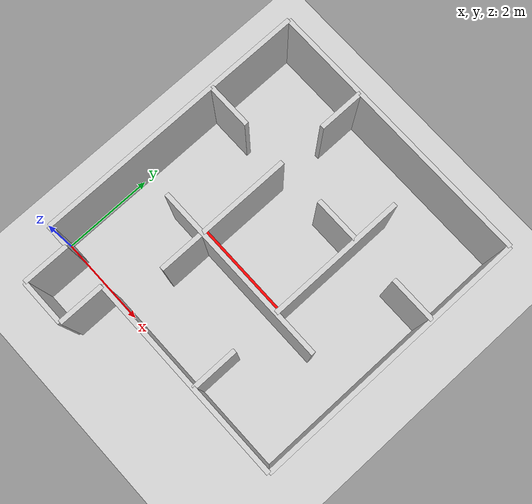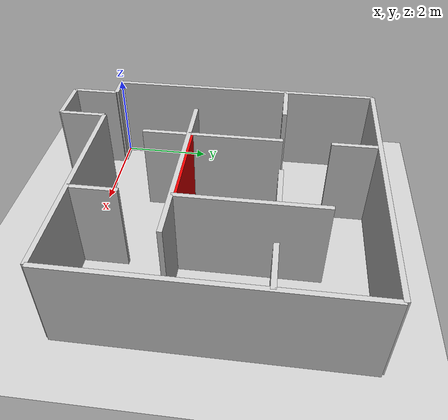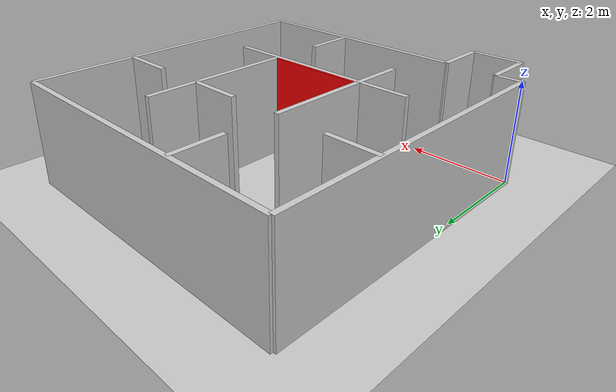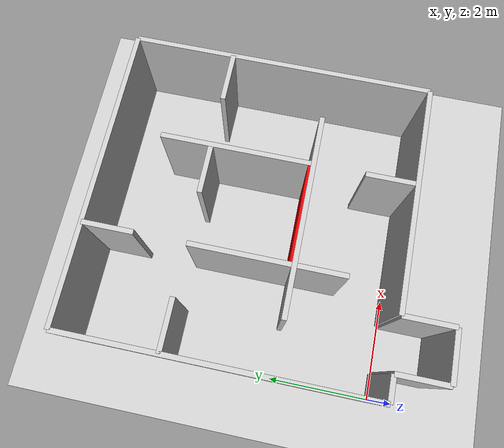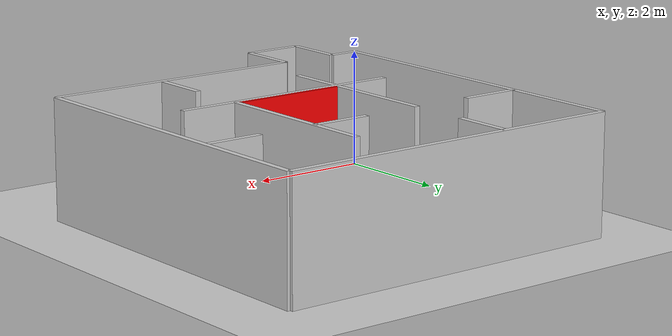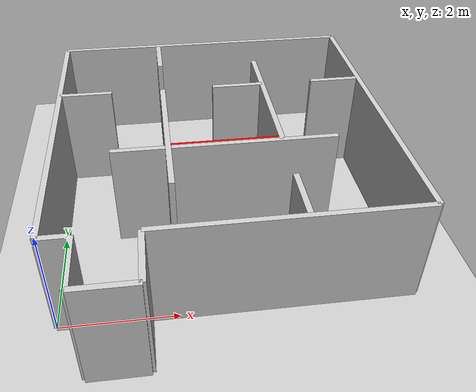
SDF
<?xml version="1.0"?>
<sdf version="1.6">
  <world name="default">
  <plugin
    filename="gz-sim-physics-system"
    name="gz::sim::systems::Physics">
  </plugin>
  <plugin
    filename="gz-sim-user-commands-system"
    name="gz::sim::systems::UserCommands">
  </plugin>
  <plugin
    filename="gz-sim-scene-broadcaster-system"
    name="gz::sim::systems::SceneBroadcaster">
  </plugin>
  <plugin
    filename="gz-sim-sensors-system"
    name="gz::sim::systems::Sensors">
    <render_engine>ogre2</render_engine>
  </plugin>
  <plugin
    filename="gz-sim-imu-system"
    name="gz::sim::systems::Imu">
  </plugin>
    <include>
      <uri>https://fuel.gazebosim.org/1.0/OpenRobotics/models/Ground Plane</uri>
    </include>

    <include>
      <uri>https://fuel.gazebosim.org/1.0/OpenRobotics/models/Sun</uri>
    </include>

    <scene>
      <shadows>false</shadows>
    </scene>

    <gui fullscreen='0'>
      <camera name='user_camera'>
        <pose frame=''>0.319654 -0.235002 9.29441 0 1.5138 0.009599</pose>
        <view_controller>orbit</view_controller>
        <projection_type>perspective</projection_type>
      </camera>
    </gui>

    <physics type="ode">
      <real_time_update_rate>1000.0</real_time_update_rate>
      <max_step_size>0.001</max_step_size>
      <real_time_factor>1</real_time_factor>
      <ode>
        <solver>
          <type>quick</type>
          <iters>150</iters>
          <precon_iters>0</precon_iters>
          <sor>1.400000</sor>
          <use_dynamic_moi_rescaling>1</use_dynamic_moi_rescaling>
        </solver>
        <constraints>
          <cfm>0.00001</cfm>
          <erp>0.2</erp>
          <contact_max_correcting_vel>2000.000000</contact_max_correcting_vel>
          <contact_surface_layer>0.01000</contact_surface_layer>
        </constraints>
      </ode>
    </physics>

    <model name="wall1">
      <static>1</static>
      <pose>0 3 1 0 0 0</pose>
      <link name="link">
        <collision name="collision">
          <geometry><box><size>0.1 6 2</size></box></geometry>
        </collision>
        <visual name="visual">
          <geometry><box><size>0.1 6 2</size></box></geometry>
          <material>
            <ambient>0.8 0.8 0.8 1</ambient>
            <diffuse>0.8 0.8 0.8 1</diffuse>
          </material>
        </visual>
      </link>
    </model>

    <model name="wall2">
      <static>1</static>
      <pose>3 6 1 0 0 0</pose>
      <link name="link">
        <collision name="collision">
          <geometry><box><size>6 0.1 2</size></box></geometry>
        </collision>
        <visual name="visual">
          <geometry><box><size>6 0.1 2</size></box></geometry>
          <material>
            <ambient>0.8 0.8 0.8 1</ambient>
            <diffuse>0.8 0.8 0.8 1</diffuse>
          </material>
        </visual>
      </link>
    </model>

    <model name="wall3">
      <static>1</static>
      <pose>6 3 1 0 0 0</pose>
      <link name="link">
        <collision name="collision">
          <geometry><box><size>0.1 6 2</size></box></geometry>
        </collision>
        <visual name="visual">
          <geometry><box><size>0.1 6 2</size></box></geometry>
          <material>
            <ambient>0.8 0.8 0.8 1</ambient>
            <diffuse>0.8 0.8 0.8 1</diffuse>
          </material>
        </visual>
      </link>
    </model>

    <model name="wall4">
      <static>1</static>
      <pose>3.75 0 1 0 0 0</pose>
      <link name="link">
        <collision name="collision">
          <geometry><box><size>4.5 0.1 2</size></box></geometry>
        </collision>
        <visual name="visual">
          <geometry><box><size>4.5 0.1 2</size></box></geometry>
          <material>
            <ambient>0.8 0.8 0.8 1</ambient>
            <diffuse>0.8 0.8 0.8 1</diffuse>
          </material>
        </visual>
      </link>
    </model>

    <model name="wall5">
      <static>1</static>
      <pose>0.25 0 1 0 0 0</pose>
      <link name="link">
        <collision name="collision">
          <geometry><box><size>0.5 0.1 2</size></box></geometry>
        </collision>
        <visual name="visual">
          <geometry><box><size>0.5 0.1 2</size></box></geometry>
          <material>
            <ambient>0.8 0.8 0.8 1</ambient>
            <diffuse>0.8 0.8 0.8 1</diffuse>
          </material>
        </visual>
      </link>
    </model>

    <model name="wall6">
      <static>1</static>
      <pose>0.5 -0.5 1 0 0 0</pose>
      <link name="link">
        <collision name="collision">
          <geometry><box><size>0.1 1 2</size></box></geometry>
        </collision>
        <visual name="visual">
          <geometry><box><size>0.1 1 2</size></box></geometry>
          <material>
            <ambient>0.8 0.8 0.8 1</ambient>
            <diffuse>0.8 0.8 0.8 1</diffuse>
          </material>
        </visual>
      </link>
    </model>

    <model name="wall7">
      <static>1</static>
      <pose>1.5 -0.5 1 0 0 0</pose>
      <link name="link">
        <collision name="collision">
          <geometry><box><size>0.1 1 2</size></box></geometry>
        </collision>
        <visual name="visual">
          <geometry><box><size>0.1 1 2</size></box></geometry>
          <material>
            <ambient>0.8 0.8 0.8 1</ambient>
            <diffuse>0.8 0.8 0.8 1</diffuse>
          </material>
        </visual>
      </link>
    </model>

    <model name="wall8">
      <static>1</static>
      <pose>1 -1 1 0 0 0</pose>
      <link name="link">
        <collision name="collision">
          <geometry><box><size>1 0.1 2</size></box></geometry>
        </collision>
        <visual name="visual">
          <geometry><box><size>1 0.1 2</size></box></geometry>
          <material>
            <ambient>0.8 0.8 0.8 1</ambient>
            <diffuse>0.8 0.8 0.8 1</diffuse>
          </material>
        </visual>
      </link>
    </model>

    <model name="wall9">
      <static>1</static>
      <pose>2 2.5 1 0 0 0</pose>
      <link name="link">
        <collision name="collision">
          <geometry><box><size>0.1 3 2</size></box></geometry>
        </collision>
        <visual name="visual">
          <geometry><box><size>0.1 3 2</size></box></geometry>
          <material>
            <ambient>0.8 0.8 0.8 1</ambient>
            <diffuse>0.8 0.8 0.8 1</diffuse>
          </material>
        </visual>
      </link>
    </model>

    <model name="wall10">
      <static>1</static>
      <pose>3 2 1 0 0 0</pose>
      <link name="link">
        <collision name="collision">
          <geometry><box><size>4 0.1 2</size></box></geometry>
        </collision>
        <visual name="visual">
          <geometry><box><size>4 0.1 2</size></box></geometry>
          <material>
            <ambient>0.8 0.8 0.8 1</ambient>
            <diffuse>0.8 0.8 0.8 1</diffuse>
          </material>
        </visual>
      </link>
    </model>

    <model name="wall11">
      <static>1</static>
      <pose>4 3.5 1 0 0 0</pose>
      <link name="link">
        <collision name="collision">
          <geometry><box><size>0.1 3 2</size></box></geometry>
        </collision>
        <visual name="visual">
          <geometry><box><size>0.1 3 2</size></box></geometry>
          <material>
            <ambient>0.8 0.8 0.8 1</ambient>
            <diffuse>0.8 0.8 0.8 1</diffuse>
          </material>
        </visual>
      </link>
    </model>

    <model name="wall12">
      <static>1</static>
      <pose>4 0.5 1 0 0 0</pose>
      <link name="link">
        <collision name="collision">
          <geometry><box><size>0.1 1 2</size></box></geometry>
        </collision>
        <visual name="visual">
          <geometry><box><size>0.1 1 2</size></box></geometry>
          <material>
            <ambient>0.8 0.8 0.8 1</ambient>
            <diffuse>0.8 0.8 0.8 1</diffuse>
          </material>
        </visual>
      </link>
    </model>

    <model name="wall13">
      <static>1</static>
      <pose>0.5 4 1 0 0 0</pose>
      <link name="link">
        <collision name="collision">
          <geometry><box><size>1 0.1 2</size></box></geometry>
        </collision>
        <visual name="visual">
          <geometry><box><size>1 0.1 2</size></box></geometry>
          <material>
            <ambient>0.8 0.8 0.8 1</ambient>
            <diffuse>0.8 0.8 0.8 1</diffuse>
          </material>
        </visual>
      </link>
    </model>

    <model name="wall14">
      <static>1</static>
      <pose>2 5.5 1 0 0 0</pose>
      <link name="link">
        <collision name="collision">
          <geometry><box><size>0.1 1 2</size></box></geometry>
        </collision>
        <visual name="visual">
          <geometry><box><size>0.1 1 2</size></box></geometry>
          <material>
            <ambient>0.8 0.8 0.8 1</ambient>
            <diffuse>0.8 0.8 0.8 1</diffuse>
          </material>
        </visual>
      </link>
    </model>

    <model name="wall15">
      <static>1</static>
      <pose>5.5 4 1 0 0 0</pose>
      <link name="link">
        <collision name="collision">
          <geometry><box><size>1 0.1 2</size></box></geometry>
        </collision>
        <visual name="visual">
          <geometry><box><size>1 0.1 2</size></box></geometry>
          <material>
            <ambient>0.8 0.8 0.8 1</ambient>
            <diffuse>0.8 0.8 0.8 1</diffuse>
          </material>
        </visual>
      </link>
    </model>

    <model name="wall16">
      <static>1</static>
      <pose>3.5 4 1 0 0 0</pose>
      <link name="link">
        <collision name="collision">
          <geometry><box><size>1 0.1 2</size></box></geometry>
        </collision>
        <visual name="visual">
          <geometry><box><size>1 0.1 2</size></box></geometry>
          <material>
            <ambient>0.8 0.8 0.8 1</ambient>
            <diffuse>0.8 0.8 0.8 1</diffuse>
          </material>
        </visual>
      </link>
    </model>

    <model name="red_goal_wall1">
      <static>1</static>
      <!-- x y z roll pitch yaw -->
      <pose>3 2.075 1 0 0 0</pose>
      <link name="link">
        <collision name="collision">
          <geometry><box><size>1.9 0.05 2.0</size></box></geometry>
        </collision>
        <visual name="visual">
          <geometry><box><size>1.9 0.05 2.0</size></box></geometry>
          <material>
            <!-- make it *very* red and bright -->
            <ambient>1 0 0 1</ambient>
            <diffuse>1 0 0 1</diffuse>
            <specular>0.2 0.2 0.2 1</specular>
            <emissive>0.6 0 0 1</emissive>
          </material>
        </visual>
      </link>
    </model>
  </world>
</sdf>
